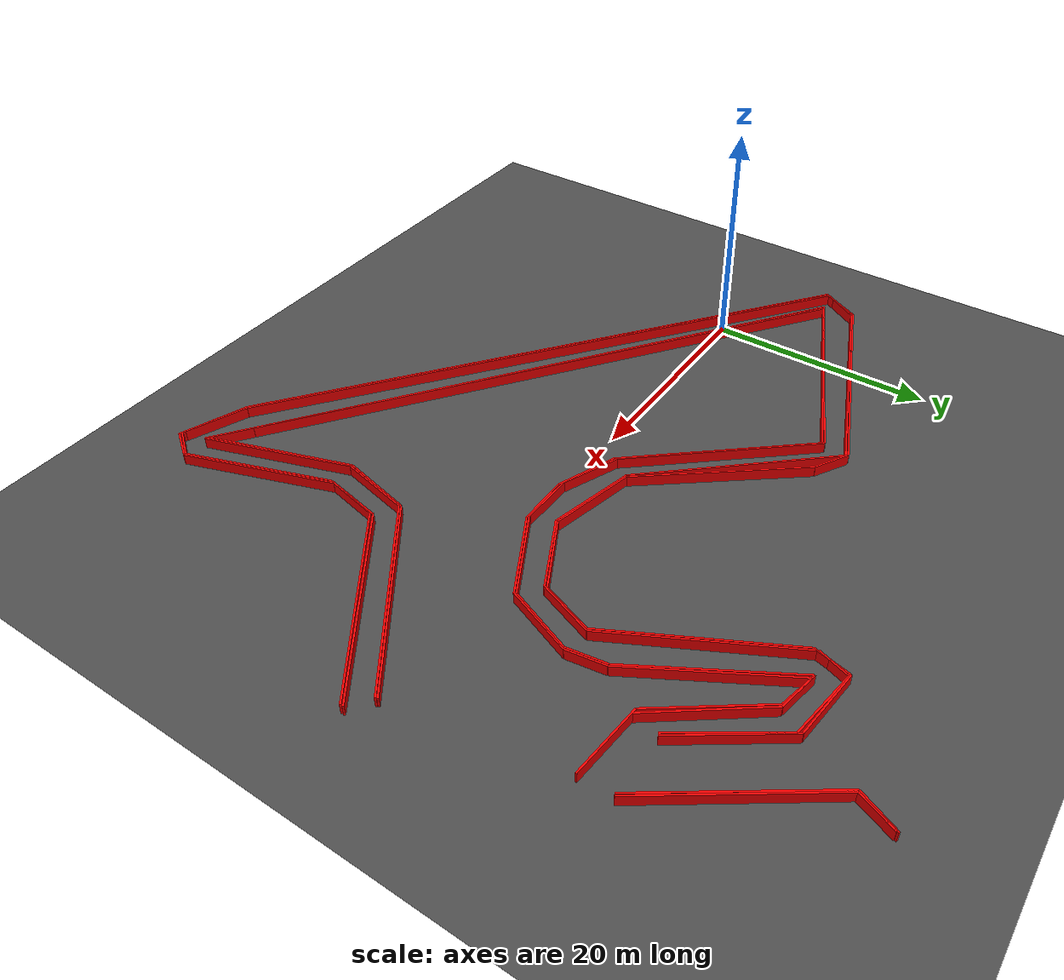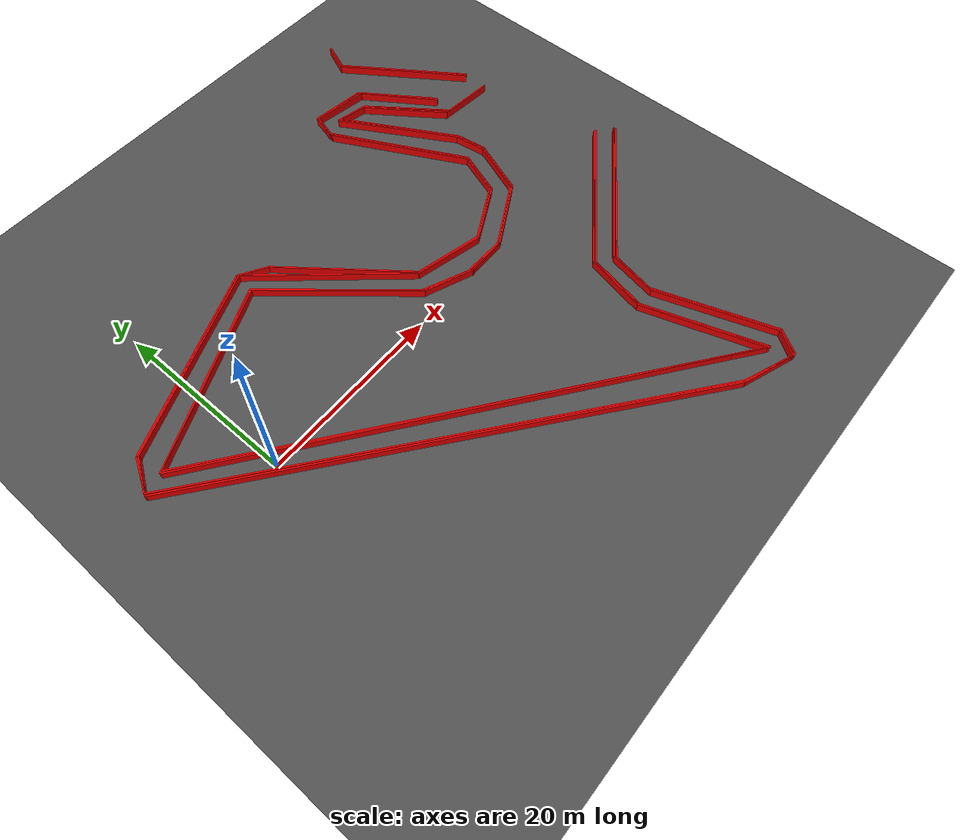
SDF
<sdf version="1.6">
 <world name="track_world">
  <model name="ground_plane">
   <static>true</static>
   <link name="link">
    <collision name="collision">
     <geometry><plane><normal>0 0 1</normal><size>1000 1000</size></plane></geometry>
    </collision>
    <visual name="visual">
     <geometry><plane><normal>0 0 1</normal><size>1000 1000</size></plane></geometry>
     <material><ambient>0.3 0.3 0.3 1</ambient><diffuse>0.3 0.3 0.3 1</diffuse></material>
    </visual>
   </link>
  </model>
  <model name="wall_3">
   <static>true</static>
   <pose>41.391579327395526 32.61387710065479 0.5 0 0 -1.9818608741847612</pose>
   <link name="link">
    <visual name="visual">
     <geometry><box><size>3.441391826136623 0.15 1.0</size></box></geometry>
     <material><ambient>1 0 0 1</ambient><diffuse>1 0 0 1</diffuse></material>
    </visual>
    <collision name="collision">
     <geometry><box><size>3.441391826136623 0.15 1.0</size></box></geometry>
    </collision>
   </link>
  </model>
  <model name="wall_4">
   <static>true</static>
   <pose>44.99118432739552 24.84843710065479 0.5 0 0 -0.9649118738723891</pose>
   <link name="link">
    <visual name="visual">
     <geometry><box><size>15.056191095509512 0.15 1.0</size></box></geometry>
     <material><ambient>1 0 0 1</ambient><diffuse>1 0 0 1</diffuse></material>
    </visual>
    <collision name="collision">
     <geometry><box><size>15.056191095509512 0.15 1.0</size></box></geometry>
    </collision>
   </link>
  </model>
  <model name="wall_6">
   <static>true</static>
   <pose>41.51291432739552 22.583517100654788 0.5 0 0 2.177981229497524</pose>
   <link name="link">
    <visual name="visual">
     <geometry><box><size>9.35705367570904 0.15 1.0</size></box></geometry>
     <material><ambient>1 0 0 1</ambient><diffuse>1 0 0 1</diffuse></material>
    </visual>
    <collision name="collision"><geometry><box><size>9.35705367570904 0.15 1.0</size></box></geometry></collision>
   </link>
  </model>
  <model name="wall_7">
   <static>true</static>
   <pose>35.81016932739552 26.789797100654788 0.5 0 0 3.022163727571455</pose>
   <link name="link">
    <visual name="visual">
     <geometry><box><size>6.110274471952957 0.15 1.0</size></box></geometry>
     <material><ambient>1 0 0 1</ambient><diffuse>1 0 0 1</diffuse></material>
    </visual>
    <collision name="collision">
     <geometry><box><size>6.110274471952957 0.15 1.0</size></box></geometry>
    </collision>
   </link>
  </model>
  <model name="wall_8">
   <static>true</static>
   <pose>32.41278932739552 25.616892100654788 0.5 0 0 -1.803353268599805</pose>
   <link name="link">
    <visual name="visual">
     <geometry><box><size>3.1588554814204435 0.15 1.0</size></box></geometry>
     <material><ambient>1 0 0 1</ambient><diffuse>1 0 0 1</diffuse></material>
    </visual>
    <collision name="collision">
     <geometry><box><size>3.1588554814204435 0.15 1.0</size></box></geometry>
    </collision>
   </link>
  </model>
  <model name="wall_9">
   <static>true</static>
   <pose>35.688834327395526 17.082997100654786 0.5 0 0 -1.0910950511828357</pose>
   <link name="link">
    <visual name="visual">
     <geometry><box><size>15.774379619208487 0.15 1.0</size></box></geometry>
     <material><ambient>1 0 0 1</ambient><diffuse>1 0 0 1</diffuse></material>
    </visual>
    <collision name="collision">
     <geometry><box><size>15.774379619208487 0.15 1.0</size></box></geometry>
    </collision>
   </link>
  </model>
  <model name="wall_10">
   <static>true</static>
   <pose>38.51998432739552 7.821092100654788 0.5 0 0 -1.9138202672155997</pose>
   <link name="link">
    <visual name="visual">
     <geometry><box><size>4.810065203882368 0.15 1.0</size></box></geometry>
     <material><ambient>1 0 0 1</ambient><diffuse>1 0 0 1</diffuse></material>
    </visual>
    <collision name="collision">
     <geometry><box><size>4.810065203882368 0.15 1.0</size></box></geometry>
    </collision>
   </link>
  </model>
  <model name="wall_11">
   <static>true</static>
   <pose>34.677709327395526 3.9383721006547887 0.5 0 0 -2.651635327336064</pose>
   <link name="link">
    <visual name="visual">
     <geometry><box><size>6.875650000000001 0.15 1.0</size></box></geometry>
     <material><ambient>1 0 0 1</ambient><diffuse>1 0 0 1</diffuse></material>
    </visual>
    <collision name="collision">
     <geometry><box><size>6.875650000000001 0.15 1.0</size></box></geometry>
    </collision>
   </link>
  </model>
  <model name="wall_12">
   <static>true</static>
   <pose>27.963839327395526 3.1699171006547857 0.5 0 0 2.9147938055359077</pose>
   <link name="link">
    <visual name="visual">
     <geometry><box><size>7.554450443030255 0.15 1.0</size></box></geometry>
     <material><ambient>1 0 0 1</ambient><diffuse>1 0 0 1</diffuse></material>
    </visual>
    <collision name="collision">
     <geometry><box><size>7.554450443030255 0.15 1.0</size></box></geometry>
    </collision>
   </link>
  </model>
  <model name="wall_13">
   <static>true</static>
   <pose>19.470389327395523 10.12645710065479 0.5 0 0 2.2382262701173006</pose>
   <link name="link">
    <visual name="visual">
     <geometry><box><size>15.551510100315028 0.15 1.0</size></box></geometry>
     <material><ambient>1 0 0 1</ambient><diffuse>1 0 0 1</diffuse></material>
    </visual>
    <collision name="collision">
     <geometry><box><size>15.551510100315028 0.15 1.0</size></box></geometry>
    </collision>
   </link>
  </model>
  <model name="wall_14">
   <static>true</static>
   <pose>13.201414327395522 17.082997100654794 0.5 0 0 2.6135182051634334</pose>
   <link name="link">
    <visual name="visual">
     <geometry><box><size>3.3712793829197816 0.15 1.0</size></box></geometry>
     <material><ambient>1 0 0 1</ambient><diffuse>1 0 0 1</diffuse></material>
    </visual>
    <collision name="collision">
     <geometry><box><size>3.3712793829197816 0.15 1.0</size></box></geometry>
    </collision>
   </link>
  </model>
  <model name="wall_15">
   <static>true</static>
   <pose>1.9172593273955219 13.96873210065479 0.5 0 0 -2.7582514151842017</pose>
   <link name="link">
    <visual name="visual">
     <geometry><box><size>21.194569286524796 0.15 1.0</size></box></geometry>
     <material><ambient>1 0 0 1</ambient><diffuse>1 0 0 1</diffuse></material>
    </visual>
    <collision name="collision">
     <geometry><box><size>21.194569286524796 0.15 1.0</size></box></geometry>
    </collision>
   </link>
  </model>
  <model name="wall_16">
   <static>true</static>
   <pose>-8.88155567260448 8.225542100654785 0.5 0 0 -2.070143048475026</pose>
   <link name="link">
    <visual name="visual">
     <geometry><box><size>4.054195179712003 0.15 1.0</size></box></geometry>
     <material><ambient>1 0 0 1</ambient><diffuse>1 0 0 1</diffuse></material>
    </visual>
    <collision name="collision">
     <geometry><box><size>4.054195179712003 0.15 1.0</size></box></geometry>
    </collision>
   </link>
  </model>
  <model name="wall_17">
   <static>true</static>
   <pose>12.554294327395521 -10.904942899345215 0.5 0 0 -0.6589152461643664</pose>
   <link name="link">
    <visual name="visual">
     <geometry><box><size>56.678267121002385 0.15 1.0</size></box></geometry>
     <material><ambient>1 0 0 1</ambient><diffuse>1 0 0 1</diffuse></material>
    </visual>
    <collision name="collision">
     <geometry><box><size>56.678267121002385 0.15 1.0</size></box></geometry>
    </collision>
   </link>
  </model>
  <model name="wall_18">
   <static>true</static>
   <pose>37.87286432739552 -29.307417899345214 0.5 0 0 -0.3465388644339422</pose>
   <link name="link">
    <visual name="visual">
     <geometry><box><size>6.192181013665544 0.15 1.0</size></box></geometry>
     <material><ambient>1 0 0 1</ambient><diffuse>1 0 0 1</diffuse></material>
    </visual>
    <collision name="collision">
     <geometry><box><size>6.192181013665544 0.15 1.0</size></box></geometry>
    </collision>
   </link>
  </model>
  <model name="wall_19">
   <static>true</static>
   <pose>41.593804327395524 -29.145637899345214 0.5 0 0 0.982793723247329</pose>
   <link name="link">
    <visual name="visual">
     <geometry><box><size>2.916530426722826 0.15 1.0</size></box></geometry>
     <material><ambient>1 0 0 1</ambient><diffuse>1 0 0 1</diffuse></material>
    </visual>
    <collision name="collision">
     <geometry><box><size>2.916530426722826 0.15 1.0</size></box></geometry>
    </collision>
   </link>
  </model>
  <model name="wall_20">
   <static>true</static>
   <pose>40.218674327395526 -21.541977899345213 0.5 0 0 1.9001224938427344</pose>
   <link name="link">
    <visual name="visual">
     <geometry><box><size>13.506450153463714 0.15 1.0</size></box></geometry>
     <material><ambient>1 0 0 1</ambient><diffuse>1 0 0 1</diffuse></material>
    </visual>
    <collision name="collision">
     <geometry><box><size>13.506450153463714 0.15 1.0</size></box></geometry>
    </collision>
   </link>
  </model>
  <model name="wall_21">
   <static>true</static>
   <pose>38.51998432739552 -12.805857899345213 0.5 0 0 1.3667783472023491</pose>
   <link name="link">
    <visual name="visual">
     <geometry><box><size>4.790982977093531 0.15 1.0</size></box></geometry>
     <material><ambient>1 0 0 1</ambient><diffuse>1 0 0 1</diffuse></material>
    </visual>
    <collision name="collision">
     <geometry><box><size>4.790982977093531 0.15 1.0</size></box></geometry>
    </collision>
   </link>
  </model>
  <model name="wall_22">
   <static>true</static>
   <pose>46.40675932739552 -5.16175289934521 0.5 0 0 0.6212825434665654</pose>
   <link name="link">
    <visual name="visual">
     <geometry><box><size>18.204743334224744 0.15 1.0</size></box></geometry>
     <material><ambient>1 0 0 1</ambient><diffuse>1 0 0 1</diffuse></material>
    </visual>
    <collision name="collision">
     <geometry><box><size>18.204743334224744 0.15 1.0</size></box></geometry>
    </collision>
   </link>
  </model>
  <model name="wall_47">
   <static>true</static>
   <pose>46.40675932739552 -4.878637899345215 0.5 0 0 -2.5239324937725054</pose>
   <link name="link">
    <visual name="visual">
     <geometry><box><size>18.15777813299028 0.15 1.0</size></box></geometry>
     <material><ambient>1 0 0 1</ambient><diffuse>1 0 0 1</diffuse></material>
    </visual>
    <collision name="collision">
     <geometry><box><size>18.15777813299028 0.15 1.0</size></box></geometry>
    </collision>
   </link>
  </model>
  <model name="wall_48">
   <static>true</static>
   <pose>38.47953932739552 -12.805857899345213 0.5 0 0 -1.7652764430100019</pose>
   <link name="link">
    <visual name="visual">
     <geometry><box><size>5.441318245838963 0.15 1.0</size></box></geometry>
     <material><ambient>1 0 0 1</ambient><diffuse>1 0 0 1</diffuse></material>
    </visual>
    <collision name="collision">
     <geometry><box><size>5.441318245838963 0.15 1.0</size></box></geometry>
    </collision>
   </link>
  </model>
  <model name="wall_49">
   <static>true</static>
   <pose>40.097339327395524 -21.703757899345213 0.5 0 0 -1.2393373395641452</pose>
   <link name="link">
    <visual name="visual">
     <geometry><box><size>13.174147807448495 0.15 1.0</size></box></geometry>
     <material><ambient>1 0 0 1</ambient><diffuse>1 0 0 1</diffuse></material>
    </visual>
    <collision name="collision">
     <geometry><box><size>13.174147807448495 0.15 1.0</size></box></geometry>
    </collision>
   </link>
  </model>
  <model name="wall_50">
   <static>true</static>
   <pose>41.391579327395526 -29.105192899345212 0.5 0 0 -2.1975392280059434</pose>
   <link name="link">
    <visual name="visual">
     <geometry><box><size>2.896268680941048 0.15 1.0</size></box></geometry>
     <material><ambient>1 0 0 1</ambient><diffuse>1 0 0 1</diffuse></material>
    </visual>
    <collision name="collision">
     <geometry><box><size>2.896268680941048 0.15 1.0</size></box></geometry>
    </collision>
   </link>
  </model>
  <model name="wall_51">
   <static>true</static>
   <pose>37.83241932739553 -29.226527899345214 0.5 0 0 2.7714218257475776</pose>
   <link name="link">
    <visual name="visual">
     <geometry><box><size>5.813397216473345 0.15 1.0</size></box></geometry>
     <material><ambient>1 0 0 1</ambient><diffuse>1 0 0 1</diffuse></material>
    </visual>
    <collision name="collision">
     <geometry><box><size>5.813397216473345 0.15 1.0</size></box></geometry>
    </collision>
   </link>
  </model>
  <model name="wall_52">
   <static>true</static>
   <pose>12.675629327395521 -10.743162899345215 0.5 0 0 2.481298361284085</pose>
   <link name="link">
    <visual name="visual">
     <geometry><box><size>56.841328751979404 0.15 1.0</size></box></geometry>
     <material><ambient>1 0 0 1</ambient><diffuse>1 0 0 1</diffuse></material>
    </visual>
    <collision name="collision">
     <geometry><box><size>56.841328751979404 0.15 1.0</size></box></geometry>
    </collision>
   </link>
  </model>
  <model name="wall_53">
   <static>true</static>
   <pose>-8.76022067260448 8.306432100654789 0.5 0 0 1.012197011451335</pose>
   <link name="link">
    <visual name="visual">
     <geometry><box><size>3.8155736688602975 0.15 1.0</size></box></geometry>
     <material><ambient>1 0 0 1</ambient><diffuse>1 0 0 1</diffuse></material>
    </visual>
    <collision name="collision">
     <geometry><box><size>3.8155736688602975 0.15 1.0</size></box></geometry>
    </collision>
   </link>
  </model>
  <model name="wall_54">
   <static>true</static>
   <pose>2.079039327395522 13.847397100654788 0.5 0 0 0.37979665402357987</pose>
   <link name="link">
    <visual name="visual">
     <geometry><box><size>21.164447660683233 0.15 1.0</size></box></geometry>
     <material><ambient>1 0 0 1</ambient><diffuse>1 0 0 1</diffuse></material>
    </visual>
    <collision name="collision">
     <geometry><box><size>21.164447660683233 0.15 1.0</size></box></geometry>
    </collision>
   </link>
  </model>
  <model name="wall_55">
   <static>true</static>
   <pose>18.014369327395524 10.854467100654787 0.5 0 0 -0.8474302758102056</pose>
   <link name="link">
    <visual name="visual">
     <geometry><box><size>18.453205772119922 0.15 1.0</size></box></geometry>
     <material><ambient>1 0 0 1</ambient><diffuse>1 0 0 1</diffuse></material>
    </visual>
    <collision name="collision">
     <geometry><box><size>18.453205772119922 0.15 1.0</size></box></geometry>
    </collision>
   </link>
  </model>
  <model name="wall_56">
   <static>true</static>
   <pose>27.882949327395526 3.048582100654791 0.5 0 0 -0.23228898897102124</pose>
   <link name="link">
    <visual name="visual">
     <geometry><box><size>7.730392839261146 0.15 1.0</size></box></geometry>
     <material><ambient>1 0 0 1</ambient><diffuse>1 0 0 1</diffuse></material>
    </visual>
    <collision name="collision">
     <geometry><box><size>7.730392839261146 0.15 1.0</size></box></geometry>
    </collision>
   </link>
  </model>
  <model name="wall_57">
   <static>true</static>
   <pose>34.677709327395526 3.73614710065479 0.5 0 0 0.4795192919925955</pose>
   <link name="link">
    <visual name="visual">
     <geometry><box><size>6.837956620701827 0.15 1.0</size></box></geometry>
     <material><ambient>1 0 0 1</ambient><diffuse>1 0 0 1</diffuse></material>
    </visual>
    <collision name="collision">
     <geometry><box><size>6.837956620701827 0.15 1.0</size></box></geometry>
    </collision>
   </link>
  </model>
  <model name="wall_58">
   <static>true</static>
   <pose>38.60087432739552 7.740202100654784 0.5 0 0 1.2193515327913453</pose>
   <link name="link">
    <visual name="visual">
     <geometry><box><size>5.169371000073405 0.15 1.0</size></box></geometry>
     <material><ambient>1 0 0 1</ambient><diffuse>1 0 0 1</diffuse></material>
    </visual>
    <collision name="collision">
     <geometry><box><size>5.169371000073405 0.15 1.0</size></box></geometry>
    </collision>
   </link>
  </model>
  <model name="wall_59">
   <static>true</static>
   <pose>35.76972432739552 17.325667100654783 0.5 0 0 2.050137714501876</pose>
   <link name="link">
    <visual name="visual">
     <geometry><box><size>16.136085127294667 0.15 1.0</size></box></geometry>
     <material><ambient>1 0 0 1</ambient><diffuse>1 0 0 1</diffuse></material>
    </visual>
    <collision name="collision">
     <geometry><box><size>16.136085127294667 0.15 1.0</size></box></geometry>
    </collision>
   </link>
  </model>
  <model name="wall_60">
   <static>true</static>
   <pose>32.493679327395526 25.778672100654788 0.5 0 0 1.2397002500907657</pose>
   <link name="link">
    <visual name="visual">
     <geometry><box><size>2.7371435757921097 0.15 1.0</size></box></geometry>
     <material><ambient>1 0 0 1</ambient><diffuse>1 0 0 1</diffuse></material>
    </visual>
    <collision name="collision">
     <geometry><box><size>2.7371435757921097 0.15 1.0</size></box></geometry>
    </collision>
   </link>
  </model>
  <model name="wall_61">
   <static>true</static>
   <pose>35.97194932739552 26.58757210065479 0.5 0 0 -0.1586552621864017</pose>
   <link name="link">
    <visual name="visual">
     <geometry><box><size>6.143913673294897 0.15 1.0</size></box></geometry>
     <material><ambient>1 0 0 1</ambient><diffuse>1 0 0 1</diffuse></material>
    </visual>
    <collision name="collision">
     <geometry><box><size>6.143913673294897 0.15 1.0</size></box></geometry>
    </collision>
   </link>
  </model>
  <model name="wall_62">
   <static>true</static>
   <pose>41.51291432739552 22.38129210065479 0.5 0 0 -0.9777937649133699</pose>
   <link name="link">
    <visual name="visual">
     <geometry><box><size>8.97405194807786 0.15 1.0</size></box></geometry>
     <material><ambient>1 0 0 1</ambient><diffuse>1 0 0 1</diffuse></material>
    </visual>
    <collision name="collision"><geometry><box><size>8.97405194807786 0.15 1.0</size></box></geometry></collision>
   </link>
  </model>
  <model name="wall_64">
   <static>true</static>
   <pose>45.15296432739552 24.88888210065479 0.5 0 0 2.179753946431405</pose>
   <link name="link">
    <visual name="visual">
     <geometry><box><size>14.989770402311045 0.15 1.0</size></box></geometry>
     <material><ambient>1 0 0 1</ambient><diffuse>1 0 0 1</diffuse></material>
    </visual>
    <collision name="collision">
     <geometry><box><size>14.989770402311045 0.15 1.0</size></box></geometry>
    </collision>
   </link>
  </model>
  <model name="wall_65">
   <static>true</static>
   <pose>41.47246932739552 32.53298710065479 0.5 0 0 1.185638820431421</pose>
   <link name="link">
    <visual name="visual">
     <geometry><box><size>3.229527551732609 0.15 1.0</size></box></geometry>
     <material><ambient>1 0 0 1</ambient><diffuse>1 0 0 1</diffuse></material>
    </visual>
    <collision name="collision">
     <geometry><box><size>3.229527551732609 0.15 1.0</size></box></geometry>
    </collision>
   </link>
  </model>
  <model name="wall_75">
   <static>true</static>
   <pose>40.66356932739552 20.439932100654786 0.5 0 0 2.2110241248566695</pose>
   <link name="link">
    <visual name="visual">
     <geometry><box><size>9.884810955668296 0.15 1.0</size></box></geometry>
     <material><ambient>1 0 0 1</ambient><diffuse>1 0 0 1</diffuse></material>
    </visual>
    <collision name="collision">
     <geometry><box><size>9.884810955668296 0.15 1.0</size></box></geometry>
    </collision>
   </link>
  </model>
  <model name="wall_76">
   <static>true</static>
   <pose>35.93150432739552 24.767547100654788 0.5 0 0 2.939830309269507</pose>
   <link name="link">
    <visual name="visual">
     <geometry><box><size>3.6328526622614405 0.15 1.0</size></box></geometry>
     <material><ambient>1 0 0 1</ambient><diffuse>1 0 0 1</diffuse></material>
    </visual>
    <collision name="collision">
     <geometry><box><size>3.6328526622614405 0.15 1.0</size></box></geometry>
    </collision>
   </link>
  </model>
  <model name="wall_77">
   <static>true</static>
   <pose>37.63019432739552 19.105247100654786 0.5 0 0 -1.047324356330717</pose>
   <link name="link">
    <visual name="visual">
     <geometry><box><size>13.916136553788917 0.15 1.0</size></box></geometry>
     <material><ambient>1 0 0 1</ambient><diffuse>1 0 0 1</diffuse></material>
    </visual>
    <collision name="collision">
     <geometry><box><size>13.916136553788917 0.15 1.0</size></box></geometry>
    </collision>
   </link>
  </model>
  <model name="wall_78">
   <static>true</static>
   <pose>41.35113432739553 11.380252100654786 0.5 0 0 -1.4288992721907323</pose>
   <link name="link">
    <visual name="visual">
     <geometry><box><size>3.4318720518107884 0.15 1.0</size></box></geometry>
     <material><ambient>1 0 0 1</ambient><diffuse>1 0 0 1</diffuse></material>
    </visual>
    <collision name="collision">
     <geometry><box><size>3.4318720518107884 0.15 1.0</size></box></geometry>
    </collision>
   </link>
  </model>
  <model name="wall_79">
   <static>true</static>
   <pose>40.50178932739553 6.850412100654786 0.5 0 0 -1.9389270981200601</pose>
   <link name="link">
    <visual name="visual">
     <geometry><box><size>6.068906683324437 0.15 1.0</size></box></geometry>
     <material><ambient>1 0 0 1</ambient><diffuse>1 0 0 1</diffuse></material>
    </visual>
    <collision name="collision">
     <geometry><box><size>6.068906683324437 0.15 1.0</size></box></geometry>
    </collision>
   </link>
  </model>
  <model name="wall_80">
   <static>true</static>
   <pose>35.891059327395524 2.0779021006547893 0.5 0 0 -2.6374266921106413</pose>
   <link name="link">
    <visual name="visual">
     <geometry><box><size>8.037470721769377 0.15 1.0</size></box></geometry>
     <material><ambient>1 0 0 1</ambient><diffuse>1 0 0 1</diffuse></material>
    </visual>
    <collision name="collision">
     <geometry><box><size>8.037470721769377 0.15 1.0</size></box></geometry>
    </collision>
   </link>
  </model>
  <model name="wall_81">
   <static>true</static>
   <pose>30.026534327395524 0.17698710065479162 0.5 0 0 3.1243529823952643</pose>
   <link name="link">
    <visual name="visual">
     <geometry><box><size>4.692317275771109 0.15 1.0</size></box></geometry>
     <material><ambient>1 0 0 1</ambient><diffuse>1 0 0 1</diffuse></material>
    </visual>
    <collision name="collision">
     <geometry><box><size>4.692317275771109 0.15 1.0</size></box></geometry>
    </collision>
   </link>
  </model>
  <model name="wall_82">
   <static>true</static>
   <pose>25.254024327395523 1.2285571006547897 0.5 0 0 2.746801533890032</pose>
   <link name="link">
    <visual name="visual">
     <geometry><box><size>5.25785 0.15 1.0</size></box></geometry>
     <material><ambient>1 0 0 1</ambient><diffuse>1 0 0 1</diffuse></material>
    </visual>
    <collision name="collision"><geometry><box><size>5.25785 0.15 1.0</size></box></geometry></collision>
   </link>
  </model>
  <model name="wall_83">
   <static>true</static>
   <pose>17.124579327395523 8.95355210065479 0.5 0 0 2.2749405572224544</pose>
   <link name="link">
    <visual name="visual">
     <geometry><box><size>17.617871711637022 0.15 1.0</size></box></geometry>
     <material><ambient>1 0 0 1</ambient><diffuse>1 0 0 1</diffuse></material>
    </visual>
    <collision name="collision">
     <geometry><box><size>17.617871711637022 0.15 1.0</size></box></geometry>
    </collision>
   </link>
  </model>
  <model name="wall_84">
   <static>true</static>
   <pose>1.9172593273955219 11.380252100654786 0.5 0 0 -2.717854398009275</pose>
   <link name="link">
    <visual name="visual">
     <geometry><box><size>20.85346710161407 0.15 1.0</size></box></geometry>
     <material><ambient>1 0 0 1</ambient><diffuse>1 0 0 1</diffuse></material>
    </visual>
    <collision name="collision">
     <geometry><box><size>20.85346710161407 0.15 1.0</size></box></geometry>
    </collision>
   </link>
  </model>
  <model name="wall_85">
   <static>true</static>
   <pose>16.19434432739552 -10.500492899345215 0.5 0 0 -0.6369384466519838</pose>
   <link name="link">
    <visual name="visual">
     <geometry><box><size>59.1642200535501 0.15 1.0</size></box></geometry>
     <material><ambient>1 0 0 1</ambient><diffuse>1 0 0 1</diffuse></material>
    </visual>
    <collision name="collision"><geometry><box><size>59.1642200535501 0.15 1.0</size></box></geometry></collision>
   </link>
  </model>
  <model name="wall_86">
   <static>true</static>
   <pose>37.87286432739552 -21.784647899345213 0.5 0 0 1.892546881191539</pose>
   <link name="link">
    <visual name="visual">
     <geometry><box><size>13.301425276413049 0.15 1.0</size></box></geometry>
     <material><ambient>1 0 0 1</ambient><diffuse>1 0 0 1</diffuse></material>
    </visual>
    <collision name="collision">
     <geometry><box><size>13.301425276413049 0.15 1.0</size></box></geometry>
    </collision>
   </link>
  </model>
  <model name="wall_87">
   <static>true</static>
   <pose>36.45728932739552 -12.280072899345214 0.5 0 0 1.3588386895522775</pose>
   <link name="link">
    <visual name="visual">
     <geometry><box><size>6.536592721976794 0.15 1.0</size></box></geometry>
     <material><ambient>1 0 0 1</ambient><diffuse>1 0 0 1</diffuse></material>
    </visual>
    <collision name="collision">
     <geometry><box><size>6.536592721976794 0.15 1.0</size></box></geometry>
    </collision>
   </link>
  </model>
  <model name="wall_88">
   <static>true</static>
   <pose>44.627179327395524 -3.7057328993452145 0.5 0 0 0.6233107009103287</pose>
   <link name="link">
    <visual name="visual">
     <geometry><box><size>18.430498492428253 0.15 1.0</size></box></geometry>
     <material><ambient>1 0 0 1</ambient><diffuse>1 0 0 1</diffuse></material>
    </visual>
    <collision name="collision">
     <geometry><box><size>18.430498492428253 0.15 1.0</size></box></geometry>
    </collision>
   </link>
  </model>
  <model name="wall_111">
   <static>true</static>
   <pose>44.54628932739553 -3.5439528993452107 0.5 0 0 -2.518281952679464</pose>
   <link name="link">
    <visual name="visual">
     <geometry><box><size>18.43049849242826 0.15 1.0</size></box></geometry>
     <material><ambient>1 0 0 1</ambient><diffuse>1 0 0 1</diffuse></material>
    </visual>
    <collision name="collision">
     <geometry><box><size>18.43049849242826 0.15 1.0</size></box></geometry>
    </collision>
   </link>
  </model>
  <model name="wall_112">
   <static>true</static>
   <pose>36.33595432739553 -12.158737899345216 0.5 0 0 -1.792110769142688</pose>
   <link name="link">
    <visual name="visual">
     <geometry><box><size>6.632980000000003 0.15 1.0</size></box></geometry>
     <material><ambient>1 0 0 1</ambient><diffuse>1 0 0 1</diffuse></material>
    </visual>
    <collision name="collision">
     <geometry><box><size>6.632980000000003 0.15 1.0</size></box></geometry>
    </collision>
   </link>
  </model>
  <model name="wall_113">
   <static>true</static>
   <pose>37.67063932739552 -21.663312899345215 0.5 0 0 -1.2529217219809412</pose>
   <link name="link">
    <visual name="visual">
     <geometry><box><size>13.19920576605274 0.15 1.0</size></box></geometry>
     <material><ambient>1 0 0 1</ambient><diffuse>1 0 0 1</diffuse></material>
    </visual>
    <collision name="collision">
     <geometry><box><size>13.19920576605274 0.15 1.0</size></box></geometry>
    </collision>
   </link>
  </model>
  <model name="wall_114">
   <static>true</static>
   <pose>16.194344327395523 -10.37915789934521 0.5 0 0 2.500846358764366</pose>
   <link name="link">
    <visual name="visual">
     <geometry><box><size>58.72636283704279 0.15 1.0</size></box></geometry>
     <material><ambient>1 0 0 1</ambient><diffuse>1 0 0 1</diffuse></material>
    </visual>
    <collision name="collision">
     <geometry><box><size>58.72636283704279 0.15 1.0</size></box></geometry>
    </collision>
   </link>
  </model>
  <model name="wall_115">
   <static>true</static>
   <pose>2.0790393273955203 11.339807100654788 0.5 0 0 0.4162315063902724</pose>
   <link name="link">
    <visual name="visual">
     <geometry><box><size>20.606796958911392 0.15 1.0</size></box></geometry>
     <material><ambient>1 0 0 1</ambient><diffuse>1 0 0 1</diffuse></material>
    </visual>
    <collision name="collision">
     <geometry><box><size>20.606796958911392 0.15 1.0</size></box></geometry>
    </collision>
   </link>
  </model>
  <model name="wall_116">
   <static>true</static>
   <pose>17.20546932739552 8.751327100654784 0.5 0 0 -0.8696140858984777</pose>
   <link name="link">
    <visual name="visual">
     <geometry><box><size>17.679600861359962 0.15 1.0</size></box></geometry>
     <material><ambient>1 0 0 1</ambient><diffuse>1 0 0 1</diffuse></material>
    </visual>
    <collision name="collision">
     <geometry><box><size>17.679600861359962 0.15 1.0</size></box></geometry>
    </collision>
   </link>
  </model>
  <model name="wall_117">
   <static>true</static>
   <pose>25.49669432739552 0.9858871006547858 0.5 0 0 -0.3723984466767541</pose>
   <link name="link">
    <visual name="visual">
     <geometry><box><size>5.5579141684718385 0.15 1.0</size></box></geometry>
     <material><ambient>1 0 0 1</ambient><diffuse>1 0 0 1</diffuse></material>
    </visual>
    <collision name="collision">
     <geometry><box><size>5.5579141684718385 0.15 1.0</size></box></geometry>
    </collision>
   </link>
  </model>
  <model name="wall_118">
   <static>true</static>
   <pose>30.35009432739552 0.015207100654784256 0.5 0 0 0.017855245139551758</pose>
   <link name="link">
    <visual name="visual">
     <geometry><box><size>4.530562174576131 0.15 1.0</size></box></geometry>
     <material><ambient>1 0 0 1</ambient><diffuse>1 0 0 1</diffuse></material>
    </visual>
    <collision name="collision">
     <geometry><box><size>4.530562174576131 0.15 1.0</size></box></geometry>
    </collision>
   </link>
  </model>
  <model name="wall_119">
   <static>true</static>
   <pose>36.05283932739552 1.9565671006547873 0.5 0 0 0.5050985070589983</pose>
   <link name="link">
    <visual name="visual">
     <geometry><box><size>7.856747054054883 0.15 1.0</size></box></geometry>
     <material><ambient>1 0 0 1</ambient><diffuse>1 0 0 1</diffuse></material>
    </visual>
    <collision name="collision">
     <geometry><box><size>7.856747054054883 0.15 1.0</size></box></geometry>
    </collision>
   </link>
  </model>
  <model name="wall_120">
   <static>true</static>
   <pose>40.62312432739552 6.809967100654788 0.5 0 0 1.2045407663641188</pose>
   <link name="link">
    <visual name="visual">
     <geometry><box><size>6.324439367034829 0.15 1.0</size></box></geometry>
     <material><ambient>1 0 0 1</ambient><diffuse>1 0 0 1</diffuse></material>
    </visual>
    <collision name="collision">
     <geometry><box><size>6.324439367034829 0.15 1.0</size></box></geometry>
    </collision>
   </link>
  </model>
  <model name="wall_121">
   <static>true</static>
   <pose>41.51291432739552 11.420697100654785 0.5 0 0 1.716106337430599</pose>
   <link name="link">
    <visual name="visual">
     <geometry><box><size>3.351814558668187 0.15 1.0</size></box></geometry>
     <material><ambient>1 0 0 1</ambient><diffuse>1 0 0 1</diffuse></material>
    </visual>
    <collision name="collision">
     <geometry><box><size>3.351814558668187 0.15 1.0</size></box></geometry>
    </collision>
   </link>
  </model>
  <model name="wall_122">
   <static>true</static>
   <pose>37.87286432739552 19.064802100654788 0.5 0 0 2.0870269974066447</pose>
   <link name="link">
    <visual name="visual">
     <geometry><box><size>13.76556730454652 0.15 1.0</size></box></geometry>
     <material><ambient>1 0 0 1</ambient><diffuse>1 0 0 1</diffuse></material>
    </visual>
    <collision name="collision">
     <geometry><box><size>13.76556730454652 0.15 1.0</size></box></geometry>
    </collision>
   </link>
  </model>
  <model name="wall_123">
   <static>true</static>
   <pose>36.012394327395526 24.68665710065479 0.5 0 0 -0.23255694180490794</pose>
   <link name="link">
    <visual name="visual">
     <geometry><box><size>3.1588554814204506 0.15 1.0</size></box></geometry>
     <material><ambient>1 0 0 1</ambient><diffuse>1 0 0 1</diffuse></material>
    </visual>
    <collision name="collision">
     <geometry><box><size>3.1588554814204506 0.15 1.0</size></box></geometry>
    </collision>
   </link>
  </model>
  <model name="wall_124">
   <static>true</static>
   <pose>40.380454327395526 20.399487100654788 0.5 0 0 -0.9456877925619742</pose>
   <link name="link">
    <visual name="visual">
     <geometry><box><size>9.676080599028724 0.15 1.0</size></box></geometry>
     <material><ambient>1 0 0 1</ambient><diffuse>1 0 0 1</diffuse></material>
    </visual>
    <collision name="collision">
     <geometry><box><size>9.676080599028724 0.15 1.0</size></box></geometry>
    </collision>
   </link>
  </model>
  <model name="wall_125">
   <static>true</static>
   <pose>46.32586932739552 16.19320710065479 0.5 0 0 -0.09065988720074347</pose>
   <link name="link">
    <visual name="visual">
     <geometry><box><size>6.254214768761948 0.15 1.0</size></box></geometry>
     <material><ambient>1 0 0 1</ambient><diffuse>1 0 0 1</diffuse></material>
    </visual>
    <collision name="collision">
     <geometry><box><size>6.254214768761948 0.15 1.0</size></box></geometry>
    </collision>
   </link>
  </model>
 </world>
</sdf>
